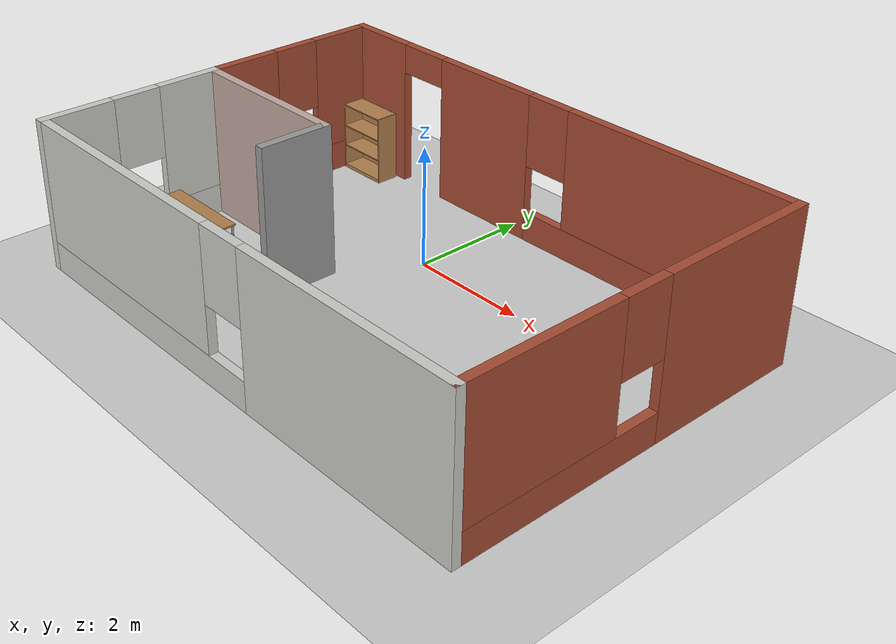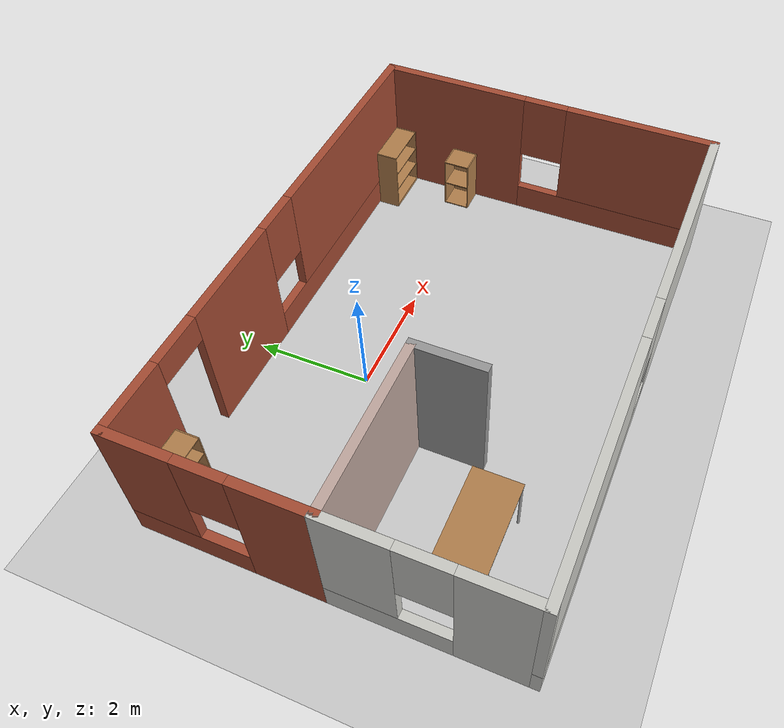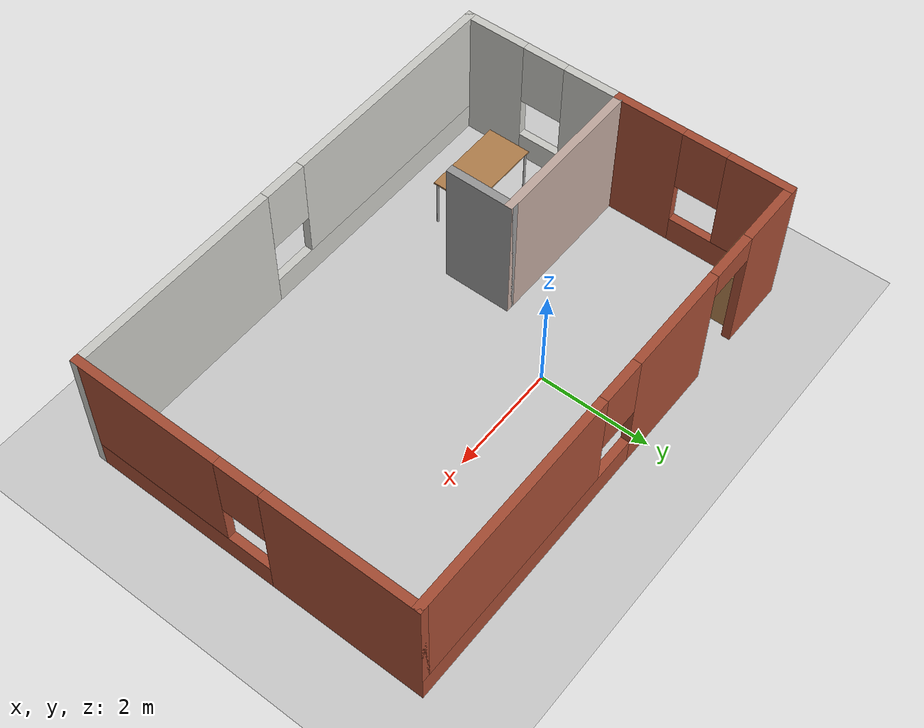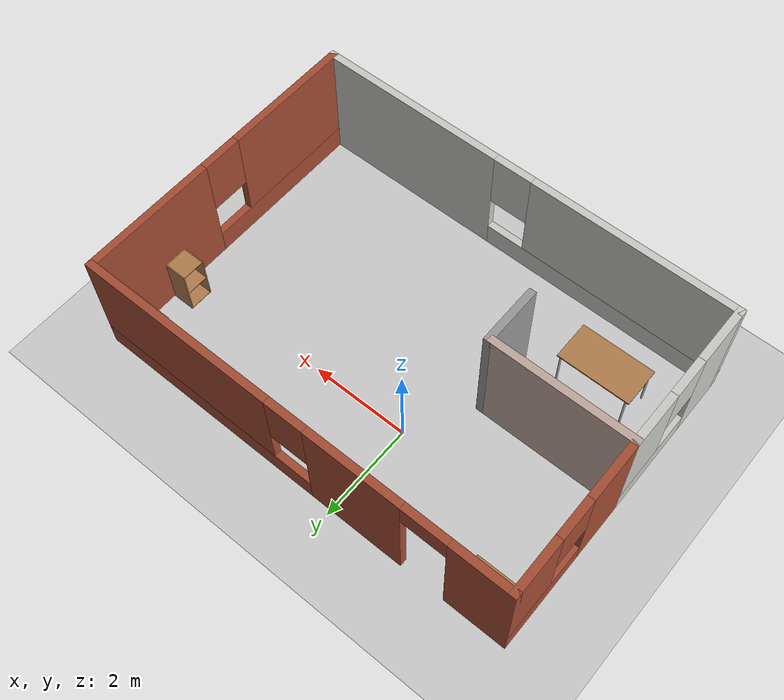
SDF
<sdf version="1.7">
 <world name="default">
  <light name="sun" type="directional">
   <pose>0 0 10 0 -0 0</pose>
   <diffuse>0.8 0.8 0.8 1</diffuse>
   <specular>0.2 0.2 0.2 1</specular>
   <attenuation>
    <range>1000</range>
    <constant>0.9</constant>
    <linear>0.01</linear>
    <quadratic>0.001</quadratic>
   </attenuation>
   <direction>-0.5 0.1 -0.9</direction>
   <spot><inner_angle>0</inner_angle><outer_angle>0</outer_angle><falloff>0</falloff></spot>
  </light>
  <model name="ground_plane">
   <static>1</static>
   <link name="link">
    <collision name="collision">
     <geometry><plane><normal>0 0 1</normal><size>100 100</size></plane></geometry>
     <surface><friction><ode><mu>100</mu><mu2>50</mu2></ode></friction></surface>
    </collision>
    <visual name="visual">
     <cast_shadows>0</cast_shadows>
     <geometry><plane><normal>0 0 1</normal><size>100 100</size></plane></geometry>
     <material>
      <script><uri>file://media/materials/scripts/gazebo.material</uri><name>Gazebo/Grey</name></script>
     </material>
    </visual>
   </link>
  </model>
  <gravity>0 0 -9.8</gravity>
  <magnetic_field>6e-06 2.3e-05 -4.2e-05</magnetic_field>
  <atmosphere type="adiabatic"/>
  <physics type="ode">
   <max_step_size>0.001</max_step_size>
   <real_time_factor>1</real_time_factor>
   <real_time_update_rate>1000</real_time_update_rate>
  </physics>
  <scene><ambient>0.4 0.4 0.4 1</ambient><background>0.7 0.7 0.7 1</background><shadows>1</shadows></scene>
  <audio><device>default</device></audio>
  <spherical_coordinates>
   <surface_model>EARTH_WGS84</surface_model>
   <latitude_deg>0</latitude_deg>
   <longitude_deg>0</longitude_deg>
   <elevation>0</elevation>
   <heading_deg>0</heading_deg>
  </spherical_coordinates>
  <model name="agv_world">
   <pose>0.79822 -1.22612 0 0 -0 0</pose>
   <link name="Wall_0">
    <pose>-4.425 1.5 0 0 -0 1.5708</pose>
    <visual name="Wall_0_Visual_0">
     <pose>-0.979147 0 1.25 0 -0 0</pose>
     <geometry><box><size>1.29171 0.15 2.5</size></box></geometry>
     <material>
      <script><uri>file://media/materials/scripts/gazebo.material</uri><name>Gazebo/Bricks</name></script>
      <ambient>1 1 1 1</ambient>
     </material>
     <meta><layer>0</layer></meta>
    </visual>
    <collision name="Wall_0_Collision_0">
     <geometry><box><size>1.29171 0.15 2.5</size></box></geometry>
     <pose>-0.979147 0 1.25 0 -0 0</pose>
    </collision>
    <visual name="Wall_0_Visual_1">
     <pose>0.645853 0 0.25 0 -0 0</pose>
     <geometry><box><size>1.95829 0.15 0.5</size></box></geometry>
     <material>
      <script><uri>file://media/materials/scripts/gazebo.material</uri><name>Gazebo/Bricks</name></script>
      <ambient>1 1 1 1</ambient>
     </material>
     <meta><layer>0</layer></meta>
    </visual>
    <collision name="Wall_0_Collision_1">
     <geometry><box><size>1.95829 0.15 0.5</size></box></geometry>
     <pose>0.645853 0 0.25 0 -0 0</pose>
    </collision>
    <visual name="Wall_0_Visual_2">
     <pose>1.04585 0 1.5 0 -0 0</pose>
     <geometry><box><size>1.15829 0.15 2</size></box></geometry>
     <material>
      <script><uri>file://media/materials/scripts/gazebo.material</uri><name>Gazebo/Bricks</name></script>
      <ambient>1 1 1 1</ambient>
     </material>
     <meta><layer>0</layer></meta>
    </visual>
    <collision name="Wall_0_Collision_2">
     <geometry><box><size>1.15829 0.15 2</size></box></geometry>
     <pose>1.04585 0 1.5 0 -0 0</pose>
    </collision>
    <visual name="Wall_0_Visual_3">
     <pose>0.066706 0 1.9 0 -0 0</pose>
     <geometry><box><size>0.8 0.15 1.2</size></box></geometry>
     <material>
      <script><uri>file://media/materials/scripts/gazebo.material</uri><name>Gazebo/Bricks</name></script>
      <ambient>1 1 1 1</ambient>
     </material>
     <meta><layer>0</layer></meta>
    </visual>
    <collision name="Wall_0_Collision_3">
     <geometry><box><size>0.8 0.15 1.2</size></box></geometry>
     <pose>0.066706 0 1.9 0 -0 0</pose>
    </collision>
   </link>
   <link name="Wall_1">
    <pose>-0 3.05 0 0 -0 0</pose>
    <visual name="Wall_1_Visual_0">
     <pose>-3.86552 0 1.25 0 -0 0</pose>
     <geometry><box><size>1.26897 0.15 2.5</size></box></geometry>
     <material>
      <script><uri>file://media/materials/scripts/gazebo.material</uri><name>Gazebo/Bricks</name></script>
      <ambient>0.760784 0.662745 0.627451 1</ambient>
     </material>
     <meta><layer>0</layer></meta>
    </visual>
    <collision name="Wall_1_Collision_0">
     <geometry><box><size>1.26897 0.15 2.5</size></box></geometry>
     <pose>-3.86552 0 1.25 0 -0 0</pose>
    </collision>
    <visual name="Wall_1_Visual_1">
     <pose>-1.34888 0 1.25 0 -0 0</pose>
     <geometry><box><size>1.9643 0.15 2.5</size></box></geometry>
     <material>
      <script><uri>file://media/materials/scripts/gazebo.material</uri><name>Gazebo/Bricks</name></script>
      <ambient>0.760784 0.662745 0.627451 1</ambient>
     </material>
     <meta><layer>0</layer></meta>
    </visual>
    <collision name="Wall_1_Collision_1">
     <geometry><box><size>1.9643 0.15 2.5</size></box></geometry>
     <pose>-1.34888 0 1.25 0 -0 0</pose>
    </collision>
    <visual name="Wall_1_Visual_2">
     <pose>2.06664 0 0.25 0 -0 0</pose>
     <geometry><box><size>4.86673 0.15 0.5</size></box></geometry>
     <material>
      <script><uri>file://media/materials/scripts/gazebo.material</uri><name>Gazebo/Bricks</name></script>
      <ambient>0.760784 0.662745 0.627451 1</ambient>
     </material>
     <meta><layer>0</layer></meta>
    </visual>
    <collision name="Wall_1_Collision_2">
     <geometry><box><size>4.86673 0.15 0.5</size></box></geometry>
     <pose>2.06664 0 0.25 0 -0 0</pose>
    </collision>
    <visual name="Wall_1_Visual_3">
     <pose>2.46664 0 1.5 0 -0 0</pose>
     <geometry><box><size>4.06673 0.15 2</size></box></geometry>
     <material>
      <script><uri>file://media/materials/scripts/gazebo.material</uri><name>Gazebo/Bricks</name></script>
      <ambient>0.760784 0.662745 0.627451 1</ambient>
     </material>
     <meta><layer>0</layer></meta>
    </visual>
    <collision name="Wall_1_Collision_3">
     <geometry><box><size>4.06673 0.15 2</size></box></geometry>
     <pose>2.46664 0 1.5 0 -0 0</pose>
    </collision>
    <visual name="Wall_1_Visual_4">
     <pose>0.033269 0 1.9 0 -0 0</pose>
     <geometry><box><size>0.8 0.15 1.2</size></box></geometry>
     <material>
      <script><uri>file://media/materials/scripts/gazebo.material</uri><name>Gazebo/Bricks</name></script>
      <ambient>0.760784 0.662745 0.627451 1</ambient>
     </material>
     <meta><layer>0</layer></meta>
    </visual>
    <collision name="Wall_1_Collision_4">
     <geometry><box><size>0.8 0.15 1.2</size></box></geometry>
     <pose>0.033269 0 1.9 0 -0 0</pose>
    </collision>
    <visual name="Wall_1_Visual_5">
     <pose>-2.78103 0 2.25 0 -0 0</pose>
     <geometry><box><size>0.9 0.15 0.5</size></box></geometry>
     <material>
      <script><uri>file://media/materials/scripts/gazebo.material</uri><name>Gazebo/Bricks</name></script>
      <ambient>0.760784 0.662745 0.627451 1</ambient>
     </material>
     <meta><layer>0</layer></meta>
    </visual>
    <collision name="Wall_1_Collision_5">
     <geometry><box><size>0.9 0.15 0.5</size></box></geometry>
     <pose>-2.78103 0 2.25 0 -0 0</pose>
    </collision>
   </link>
   <link name="Wall_2">
    <pose>4.425 -0 0 0 -0 -1.5708</pose>
    <visual name="Wall_2_Visual_0">
     <pose>-1.75433 0 1.25 0 -0 0</pose>
     <geometry><box><size>2.74134 0.15 2.5</size></box></geometry>
     <material>
      <script><uri>file://media/materials/scripts/gazebo.material</uri><name>Gazebo/Bricks</name></script>
      <ambient>0.760784 0.662745 0.627451 1</ambient>
     </material>
     <meta><layer>0</layer></meta>
    </visual>
    <collision name="Wall_2_Collision_0">
     <geometry><box><size>2.74134 0.15 2.5</size></box></geometry>
     <pose>-1.75433 0 1.25 0 -0 0</pose>
    </collision>
    <visual name="Wall_2_Visual_1">
     <pose>1.37067 0 0.25 0 -0 0</pose>
     <geometry><box><size>3.50866 0.15 0.5</size></box></geometry>
     <material>
      <script><uri>file://media/materials/scripts/gazebo.material</uri><name>Gazebo/Bricks</name></script>
      <ambient>0.760784 0.662745 0.627451 1</ambient>
     </material>
     <meta><layer>0</layer></meta>
    </visual>
    <collision name="Wall_2_Collision_1">
     <geometry><box><size>3.50866 0.15 0.5</size></box></geometry>
     <pose>1.37067 0 0.25 0 -0 0</pose>
    </collision>
    <visual name="Wall_2_Visual_2">
     <pose>1.77067 0 1.5 0 -0 0</pose>
     <geometry><box><size>2.70866 0.15 2</size></box></geometry>
     <material>
      <script><uri>file://media/materials/scripts/gazebo.material</uri><name>Gazebo/Bricks</name></script>
      <ambient>0.760784 0.662745 0.627451 1</ambient>
     </material>
     <meta><layer>0</layer></meta>
    </visual>
    <collision name="Wall_2_Collision_2">
     <geometry><box><size>2.70866 0.15 2</size></box></geometry>
     <pose>1.77067 0 1.5 0 -0 0</pose>
    </collision>
    <visual name="Wall_2_Visual_3">
     <pose>0.016339 0 1.9 0 -0 0</pose>
     <geometry><box><size>0.8 0.15 1.2</size></box></geometry>
     <material>
      <script><uri>file://media/materials/scripts/gazebo.material</uri><name>Gazebo/Bricks</name></script>
      <ambient>0.760784 0.662745 0.627451 1</ambient>
     </material>
     <meta><layer>0</layer></meta>
    </visual>
    <collision name="Wall_2_Collision_3">
     <geometry><box><size>0.8 0.15 1.2</size></box></geometry>
     <pose>0.016339 0 1.9 0 -0 0</pose>
    </collision>
   </link>
   <link name="Wall_3">
    <pose>-0 -3.05 0 0 -0 3.14159</pose>
    <visual name="Wall_3_Visual_0">
     <pose>-2.53699 0 1.25 0 -0 0</pose>
     <geometry><box><size>3.92602 0.15 2.5</size></box></geometry>
     <material>
      <script><uri>file://media/materials/scripts/gazebo.material</uri><name>Gazebo/CeilingTiled</name></script>
      <ambient>0.760784 0.662745 0.627451 1</ambient>
     </material>
     <meta><layer>0</layer></meta>
    </visual>
    <collision name="Wall_3_Collision_0">
     <geometry><box><size>3.92602 0.15 2.5</size></box></geometry>
     <pose>-2.53699 0 1.25 0 -0 0</pose>
    </collision>
    <visual name="Wall_3_Visual_1">
     <pose>1.96301 0 0.25 0 -0 0</pose>
     <geometry><box><size>5.07398 0.15 0.5</size></box></geometry>
     <material>
      <script><uri>file://media/materials/scripts/gazebo.material</uri><name>Gazebo/CeilingTiled</name></script>
      <ambient>0.760784 0.662745 0.627451 1</ambient>
     </material>
     <meta><layer>0</layer></meta>
    </visual>
    <collision name="Wall_3_Collision_1">
     <geometry><box><size>5.07398 0.15 0.5</size></box></geometry>
     <pose>1.96301 0 0.25 0 -0 0</pose>
    </collision>
    <visual name="Wall_3_Visual_2">
     <pose>2.36301 0 1.5 0 -0 0</pose>
     <geometry><box><size>4.27398 0.15 2</size></box></geometry>
     <material>
      <script><uri>file://media/materials/scripts/gazebo.material</uri><name>Gazebo/CeilingTiled</name></script>
      <ambient>0.760784 0.662745 0.627451 1</ambient>
     </material>
     <meta><layer>0</layer></meta>
    </visual>
    <collision name="Wall_3_Collision_2">
     <geometry><box><size>4.27398 0.15 2</size></box></geometry>
     <pose>2.36301 0 1.5 0 -0 0</pose>
    </collision>
    <visual name="Wall_3_Visual_3">
     <pose>-0.173984 0 1.9 0 -0 0</pose>
     <geometry><box><size>0.8 0.15 1.2</size></box></geometry>
     <material>
      <script><uri>file://media/materials/scripts/gazebo.material</uri><name>Gazebo/CeilingTiled</name></script>
      <ambient>0.760784 0.662745 0.627451 1</ambient>
     </material>
     <meta><layer>0</layer></meta>
    </visual>
    <collision name="Wall_3_Collision_3">
     <geometry><box><size>0.8 0.15 1.2</size></box></geometry>
     <pose>-0.173984 0 1.9 0 -0 0</pose>
    </collision>
   </link>
   <link name="Wall_4">
    <pose>-4.425 -1.55 0 0 -0 1.5708</pose>
    <visual name="Wall_4_Visual_0">
     <pose>-0.959423 0 1.25 0 -0 0</pose>
     <geometry><box><size>1.23115 0.15 2.5</size></box></geometry>
     <material>
      <script><uri>file://media/materials/scripts/gazebo.material</uri><name>Gazebo/CeilingTiled</name></script>
      <ambient>0.760784 0.662745 0.627451 1</ambient>
     </material>
     <meta><layer>0</layer></meta>
    </visual>
    <collision name="Wall_4_Collision_0">
     <geometry><box><size>1.23115 0.15 2.5</size></box></geometry>
     <pose>-0.959423 0 1.25 0 -0 0</pose>
    </collision>
    <visual name="Wall_4_Visual_1">
     <pose>0.615577 0 0.25 0 -0 0</pose>
     <geometry><box><size>1.91885 0.15 0.5</size></box></geometry>
     <material>
      <script><uri>file://media/materials/scripts/gazebo.material</uri><name>Gazebo/CeilingTiled</name></script>
      <ambient>0.760784 0.662745 0.627451 1</ambient>
     </material>
     <meta><layer>0</layer></meta>
    </visual>
    <collision name="Wall_4_Collision_1">
     <geometry><box><size>1.91885 0.15 0.5</size></box></geometry>
     <pose>0.615577 0 0.25 0 -0 0</pose>
    </collision>
    <visual name="Wall_4_Visual_2">
     <pose>1.01558 0 1.5 0 -0 0</pose>
     <geometry><box><size>1.11885 0.15 2</size></box></geometry>
     <material>
      <script><uri>file://media/materials/scripts/gazebo.material</uri><name>Gazebo/CeilingTiled</name></script>
      <ambient>0.760784 0.662745 0.627451 1</ambient>
     </material>
     <meta><layer>0</layer></meta>
    </visual>
    <collision name="Wall_4_Collision_2">
     <geometry><box><size>1.11885 0.15 2</size></box></geometry>
     <pose>1.01558 0 1.5 0 -0 0</pose>
    </collision>
    <visual name="Wall_4_Visual_3">
     <pose>0.056153 0 1.9 0 -0 0</pose>
     <geometry><box><size>0.8 0.15 1.2</size></box></geometry>
     <material>
      <script><uri>file://media/materials/scripts/gazebo.material</uri><name>Gazebo/CeilingTiled</name></script>
      <ambient>0.760784 0.662745 0.627451 1</ambient>
     </material>
     <meta><layer>0</layer></meta>
    </visual>
    <collision name="Wall_4_Collision_3">
     <geometry><box><size>0.8 0.15 1.2</size></box></geometry>
     <pose>0.056153 0 1.9 0 -0 0</pose>
    </collision>
   </link>
   <link name="Wall_5">
    <collision name="Wall_5_Collision">
     <geometry><box><size>3 0.15 2.5</size></box></geometry>
     <pose>0 0 1.25 0 -0 0</pose>
    </collision>
    <visual name="Wall_5_Visual">
     <pose>0 0 1.25 0 -0 0</pose>
     <geometry><box><size>3 0.15 2.5</size></box></geometry>
     <material>
      <script><uri>file://media/materials/scripts/gazebo.material</uri><name>Gazebo/Grey</name></script>
      <ambient>0.760784 0.662745 0.627451 1</ambient>
     </material>
     <meta><layer>0</layer></meta>
    </visual>
    <pose>-3 -0.05 0 0 -0 0</pose>
   </link>
   <link name="Wall_6">
    <collision name="Wall_6_Collision">
     <geometry><box><size>1.25 0.15 2.5</size></box></geometry>
     <pose>0 0 1.25 0 -0 0</pose>
    </collision>
    <visual name="Wall_6_Visual">
     <pose>0 0 1.25 0 -0 0</pose>
     <geometry><box><size>1.25 0.15 2.5</size></box></geometry>
     <material>
      <script><uri>file://media/materials/scripts/gazebo.material</uri><name>Gazebo/Grey</name></script>
      <ambient>1 1 1 1</ambient>
     </material>
     <meta><layer>0</layer></meta>
    </visual>
    <pose>-1.575 -0.6 0 0 -0 -1.5708</pose>
   </link>
   <static>1</static>
  </model>
  <model name="bookshelf">
   <static>1</static>
   <link name="link">
    <inertial><mass>1</mass></inertial>
    <collision name="back">
     <pose>0 0.005 0.6 0 -0 0</pose>
     <geometry><box><size>0.9 0.01 1.2</size></box></geometry>
    </collision>
    <visual name="visual1">
     <pose>0 0.005 0.6 0 -0 0</pose>
     <geometry><box><size>0.9 0.01 1.2</size></box></geometry>
     <material>
      <script><uri>file://media/materials/scripts/gazebo.material</uri><name>Gazebo/Wood</name></script>
     </material>
    </visual>
    <collision name="left_side">
     <pose>0.45 -0.195 0.6 0 -0 0</pose>
     <geometry><box><size>0.02 0.4 1.2</size></box></geometry>
    </collision>
    <visual name="visual2">
     <pose>0.45 -0.195 0.6 0 -0 0</pose>
     <geometry><box><size>0.02 0.4 1.2</size></box></geometry>
     <material>
      <script><uri>file://media/materials/scripts/gazebo.material</uri><name>Gazebo/Wood</name></script>
     </material>
    </visual>
    <collision name="right_side">
     <pose>-0.45 -0.195 0.6 0 -0 0</pose>
     <geometry><box><size>0.02 0.4 1.2</size></box></geometry>
    </collision>
    <visual name="visual3">
     <pose>-0.45 -0.195 0.6 0 -0 0</pose>
     <geometry><box><size>0.02 0.4 1.2</size></box></geometry>
     <material>
      <script><uri>file://media/materials/scripts/gazebo.material</uri><name>Gazebo/Wood</name></script>
     </material>
    </visual>
    <collision name="bottom">
     <pose>0 -0.195 0.03 0 -0 0</pose>
     <geometry><box><size>0.88 0.4 0.06</size></box></geometry>
    </collision>
    <visual name="visual4">
     <pose>0 -0.195 0.03 0 -0 0</pose>
     <geometry><box><size>0.88 0.4 0.06</size></box></geometry>
     <material>
      <script><uri>file://media/materials/scripts/gazebo.material</uri><name>Gazebo/Wood</name></script>
     </material>
    </visual>
    <collision name="top">
     <pose>0 -0.195 1.19 0 -0 0</pose>
     <geometry><box><size>0.88 0.4 0.02</size></box></geometry>
    </collision>
    <visual name="visual5">
     <pose>0 -0.195 1.19 0 -0 0</pose>
     <geometry><box><size>0.88 0.4 0.02</size></box></geometry>
     <material>
      <script><uri>file://media/materials/scripts/gazebo.material</uri><name>Gazebo/Wood</name></script>
     </material>
    </visual>
    <collision name="low_shelf">
     <pose>0 -0.195 0.43 0 -0 0</pose>
     <geometry><box><size>0.88 0.4 0.02</size></box></geometry>
    </collision>
    <visual name="visual6">
     <pose>0 -0.195 0.43 0 -0 0</pose>
     <geometry><box><size>0.88 0.4 0.02</size></box></geometry>
     <material>
      <script><uri>file://media/materials/scripts/gazebo.material</uri><name>Gazebo/Wood</name></script>
     </material>
    </visual>
    <collision name="high_shelf">
     <pose>0 -0.195 0.8 0 -0 0</pose>
     <geometry><box><size>0.88 0.4 0.02</size></box></geometry>
    </collision>
    <visual name="visual7">
     <pose>0 -0.195 0.8 0 -0 0</pose>
     <geometry><box><size>0.88 0.4 0.02</size></box></geometry>
     <material>
      <script><uri>file://media/materials/scripts/gazebo.material</uri><name>Gazebo/Wood</name></script>
     </material>
    </visual>
   </link>
   <pose>-3.07564 1.70067 0 0 -0 0</pose>
  </model>
  <model name="bookshelf_0">
   <static>1</static>
   <link name="link">
    <inertial><mass>1</mass></inertial>
    <collision name="back">
     <pose>0 0.005 0.6 0 -0 0</pose>
     <geometry><box><size>0.9 0.01 1.2</size></box></geometry>
    </collision>
    <visual name="visual1">
     <pose>0 0.005 0.6 0 -0 0</pose>
     <geometry><box><size>0.9 0.01 1.2</size></box></geometry>
     <material>
      <script><uri>file://media/materials/scripts/gazebo.material</uri><name>Gazebo/Wood</name></script>
     </material>
    </visual>
    <collision name="left_side">
     <pose>0.45 -0.195 0.6 0 -0 0</pose>
     <geometry><box><size>0.02 0.4 1.2</size></box></geometry>
    </collision>
    <visual name="visual2">
     <pose>0.45 -0.195 0.6 0 -0 0</pose>
     <geometry><box><size>0.02 0.4 1.2</size></box></geometry>
     <material>
      <script><uri>file://media/materials/scripts/gazebo.material</uri><name>Gazebo/Wood</name></script>
     </material>
    </visual>
    <collision name="right_side">
     <pose>-0.45 -0.195 0.6 0 -0 0</pose>
     <geometry><box><size>0.02 0.4 1.2</size></box></geometry>
    </collision>
    <visual name="visual3">
     <pose>-0.45 -0.195 0.6 0 -0 0</pose>
     <geometry><box><size>0.02 0.4 1.2</size></box></geometry>
     <material>
      <script><uri>file://media/materials/scripts/gazebo.material</uri><name>Gazebo/Wood</name></script>
     </material>
    </visual>
    <collision name="bottom">
     <pose>0 -0.195 0.03 0 -0 0</pose>
     <geometry><box><size>0.88 0.4 0.06</size></box></geometry>
    </collision>
    <visual name="visual4">
     <pose>0 -0.195 0.03 0 -0 0</pose>
     <geometry><box><size>0.88 0.4 0.06</size></box></geometry>
     <material>
      <script><uri>file://media/materials/scripts/gazebo.material</uri><name>Gazebo/Wood</name></script>
     </material>
    </visual>
    <collision name="top">
     <pose>0 -0.195 1.19 0 -0 0</pose>
     <geometry><box><size>0.88 0.4 0.02</size></box></geometry>
    </collision>
    <visual name="visual5">
     <pose>0 -0.195 1.19 0 -0 0</pose>
     <geometry><box><size>0.88 0.4 0.02</size></box></geometry>
     <material>
      <script><uri>file://media/materials/scripts/gazebo.material</uri><name>Gazebo/Wood</name></script>
     </material>
    </visual>
    <collision name="low_shelf">
     <pose>0 -0.195 0.43 0 -0 0</pose>
     <geometry><box><size>0.88 0.4 0.02</size></box></geometry>
    </collision>
    <visual name="visual6">
     <pose>0 -0.195 0.43 0 -0 0</pose>
     <geometry><box><size>0.88 0.4 0.02</size></box></geometry>
     <material>
      <script><uri>file://media/materials/scripts/gazebo.material</uri><name>Gazebo/Wood</name></script>
     </material>
    </visual>
    <collision name="high_shelf">
     <pose>0 -0.195 0.8 0 -0 0</pose>
     <geometry><box><size>0.88 0.4 0.02</size></box></geometry>
    </collision>
    <visual name="visual7">
     <pose>0 -0.195 0.8 0 -0 0</pose>
     <geometry><box><size>0.88 0.4 0.02</size></box></geometry>
     <material>
      <script><uri>file://media/materials/scripts/gazebo.material</uri><name>Gazebo/Wood</name></script>
     </material>
    </visual>
   </link>
   <pose>4.65834 1.72914 0 0 -0 0</pose>
  </model>
  <model name="cabinet">
   <static>1</static>
   <link name="cabinet_bottom_plate">
    <inertial>
     <pose>0 0 -1 0 -0 0</pose>
     <inertia><ixx>2.05</ixx><ixy>0</ixy><ixz>0</ixz><iyy>2.05</iyy><iyz>0</iyz><izz>2.05</izz></inertia>
     <mass>25</mass>
    </inertial>
    <collision name="cabinet_bottom_plate_geom">
     <pose>0 0 0.01 0 -0 0</pose>
     <geometry><box><size>0.45 0.45 0.02</size></box></geometry>
    </collision>
    <visual name="cabinet_bottom_plate_geom_visual">
     <pose>0 0 0.01 0 -0 0</pose>
     <geometry><box><size>0.45 0.45 0.02</size></box></geometry>
     <material>
      <script><uri>file://media/materials/scripts/gazebo.material</uri><name>Gazebo/Wood</name></script>
     </material>
    </visual>
    <collision name="cabinet_bottom_plate_geom_cabinet_back_plate">
     <pose>0.235 0 0.51 0 -0 0</pose>
     <geometry><box><size>0.02 0.45 1.02</size></box></geometry>
    </collision>
    <visual name="cabinet_bottom_plate_geom_cabinet_back_plate_visual">
     <pose>0.235 0 0.51 0 -0 0</pose>
     <geometry><box><size>0.02 0.45 1.02</size></box></geometry>
     <material>
      <script><uri>file://media/materials/scripts/gazebo.material</uri><name>Gazebo/Wood</name></script>
     </material>
    </visual>
    <collision name="cabinet_bottom_plate_geom_cabinet_left_plate">
     <pose>0 0.235 0.51 0 -0 0</pose>
     <geometry><box><size>0.45 0.02 1.02</size></box></geometry>
    </collision>
    <visual name="cabinet_bottom_plate_geom_cabinet_left_plate_visual">
     <pose>0 0.235 0.51 0 -0 0</pose>
     <geometry><box><size>0.45 0.02 1.02</size></box></geometry>
     <material>
      <script><uri>file://media/materials/scripts/gazebo.material</uri><name>Gazebo/Wood</name></script>
     </material>
    </visual>
    <collision name="cabinet_bottom_plate_geom_cabinet_middle_plate">
     <pose>0 0 0.51 0 -0 0</pose>
     <geometry><box><size>0.45 0.45 0.02</size></box></geometry>
    </collision>
    <visual name="cabinet_bottom_plate_geom_cabinet_middle_plate_visual">
     <pose>0 0 0.51 0 -0 0</pose>
     <geometry><box><size>0.45 0.45 0.02</size></box></geometry>
     <material>
      <script><uri>file://media/materials/scripts/gazebo.material</uri><name>Gazebo/Wood</name></script>
     </material>
    </visual>
    <collision name="cabinet_bottom_plate_geom_cabinet_right_plate">
     <pose>0 -0.235 0.51 0 -0 0</pose>
     <geometry><box><size>0.45 0.02 1.02</size></box></geometry>
    </collision>
    <visual name="cabinet_bottom_plate_geom_cabinet_right_plate_visual">
     <pose>0 -0.235 0.51 0 -0 0</pose>
     <geometry><box><size>0.45 0.02 1.02</size></box></geometry>
     <material>
      <script><uri>file://media/materials/scripts/gazebo.material</uri><name>Gazebo/Wood</name></script>
     </material>
    </visual>
    <collision name="cabinet_bottom_plate_geom_cabinet_top_plate">
     <pose>0 0 1.01 0 -0 0</pose>
     <geometry><box><size>0.45 0.45 0.02</size></box></geometry>
    </collision>
    <visual name="cabinet_bottom_plate_geom_cabinet_top_plate_visual">
     <pose>0 0 1.01 0 -0 0</pose>
     <geometry><box><size>0.45 0.45 0.02</size></box></geometry>
     <material>
      <script><uri>file://media/materials/scripts/gazebo.material</uri><name>Gazebo/Wood</name></script>
     </material>
    </visual>
   </link>
   <pose>4.90693 0.283524 0 0 -0 0</pose>
  </model>
  <model name="table">
   <static>1</static>
   <link name="link">
    <collision name="surface">
     <pose>0 0 1 0 -0 0</pose>
     <geometry><box><size>1.5 0.8 0.03</size></box></geometry>
     <surface><friction><ode><mu>0.6</mu><mu2>0.6</mu2></ode></friction></surface>
    </collision>
    <visual name="visual1">
     <pose>0 0 1 0 -0 0</pose>
     <geometry><box><size>1.5 0.8 0.03</size></box></geometry>
     <material>
      <script><uri>file://media/materials/scripts/gazebo.material</uri><name>Gazebo/Wood</name></script>
     </material>
    </visual>
    <collision name="front_left_leg">
     <pose>0.68 0.38 0.5 0 -0 0</pose>
     <geometry><cylinder><radius>0.02</radius><length>1</length></cylinder></geometry>
    </collision>
    <visual name="front_left_leg">
     <pose>0.68 0.38 0.5 0 -0 0</pose>
     <geometry><cylinder><radius>0.02</radius><length>1</length></cylinder></geometry>
     <material>
      <script><uri>file://media/materials/scripts/gazebo.material</uri><name>Gazebo/Grey</name></script>
     </material>
    </visual>
    <collision name="front_right_leg">
     <pose>0.68 -0.38 0.5 0 -0 0</pose>
     <geometry><cylinder><radius>0.02</radius><length>1</length></cylinder></geometry>
    </collision>
    <visual name="front_right_leg">
     <pose>0.68 -0.38 0.5 0 -0 0</pose>
     <geometry><cylinder><radius>0.02</radius><length>1</length></cylinder></geometry>
     <material>
      <script><uri>file://media/materials/scripts/gazebo.material</uri><name>Gazebo/Grey</name></script>
     </material>
    </visual>
    <collision name="back_right_leg">
     <pose>-0.68 -0.38 0.5 0 -0 0</pose>
     <geometry><cylinder><radius>0.02</radius><length>1</length></cylinder></geometry>
    </collision>
    <visual name="back_right_leg">
     <pose>-0.68 -0.38 0.5 0 -0 0</pose>
     <geometry><cylinder><radius>0.02</radius><length>1</length></cylinder></geometry>
     <material>
      <script><uri>file://media/materials/scripts/gazebo.material</uri><name>Gazebo/Grey</name></script>
     </material>
    </visual>
    <collision name="back_left_leg">
     <pose>-0.68 0.38 0.5 0 -0 0</pose>
     <geometry><cylinder><radius>0.02</radius><length>1</length></cylinder></geometry>
    </collision>
    <visual name="back_left_leg">
     <pose>-0.68 0.38 0.5 0 -0 0</pose>
     <geometry><cylinder><radius>0.02</radius><length>1</length></cylinder></geometry>
     <material>
      <script><uri>file://media/materials/scripts/gazebo.material</uri><name>Gazebo/Grey</name></script>
     </material>
    </visual>
   </link>
   <pose>-2.1812 -2.87952 0 0 -0 0</pose>
  </model>
 </world>
</sdf>
